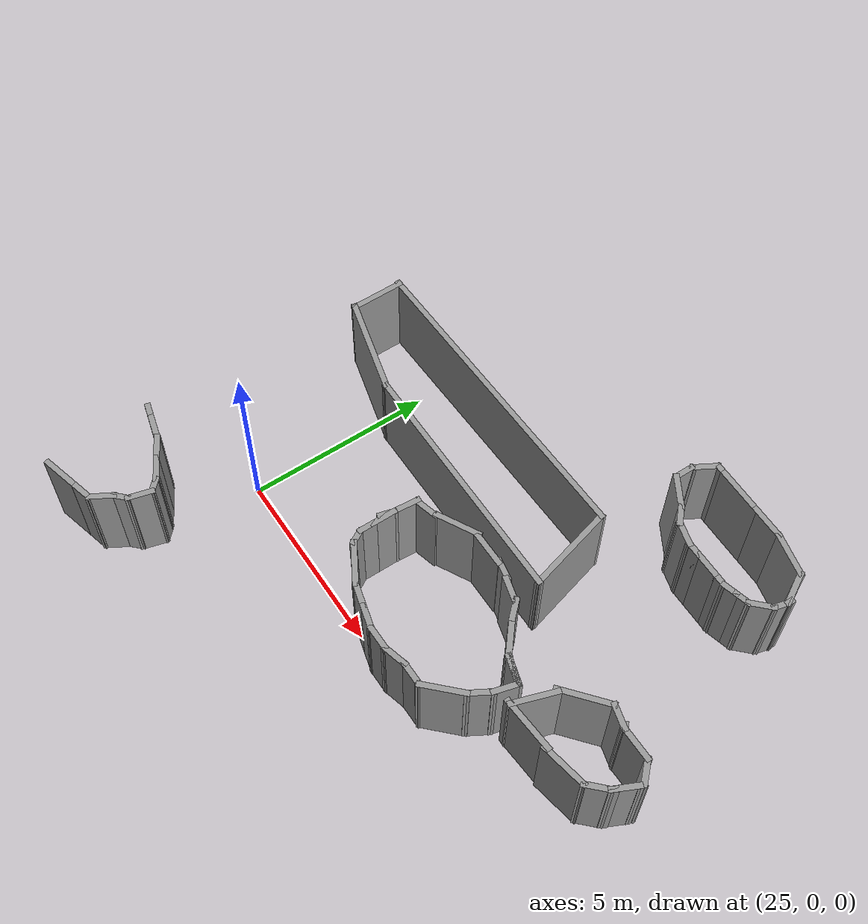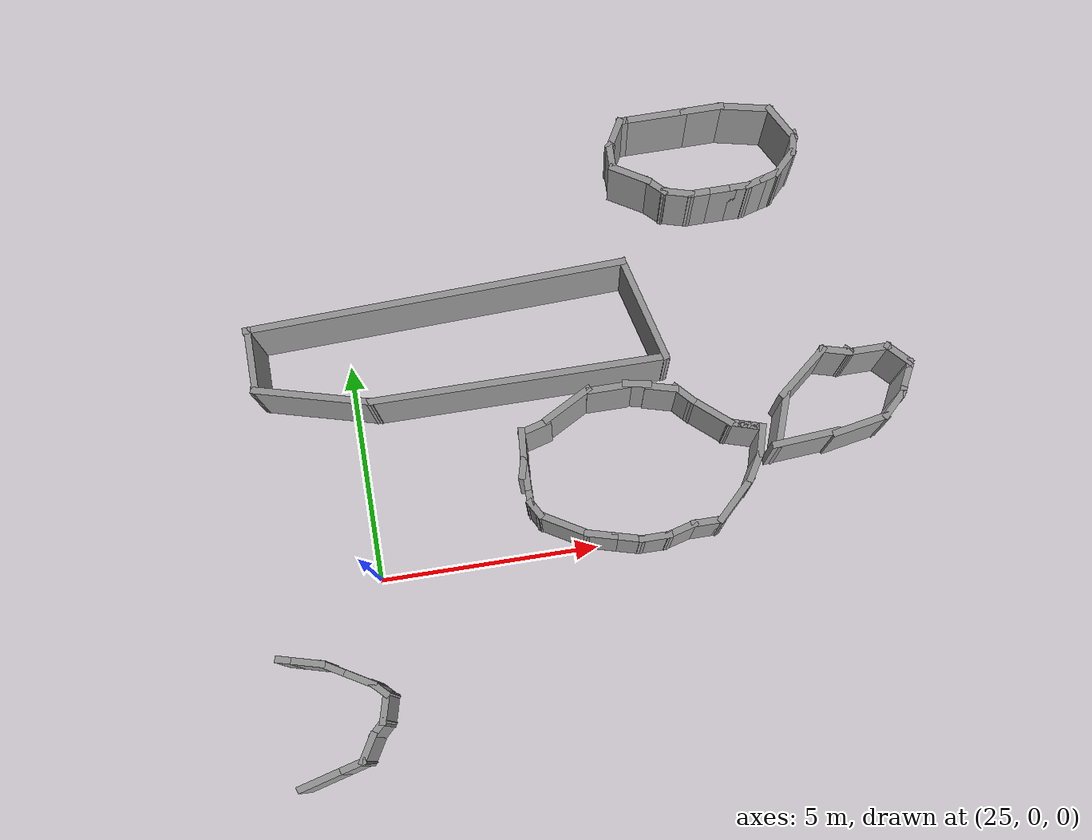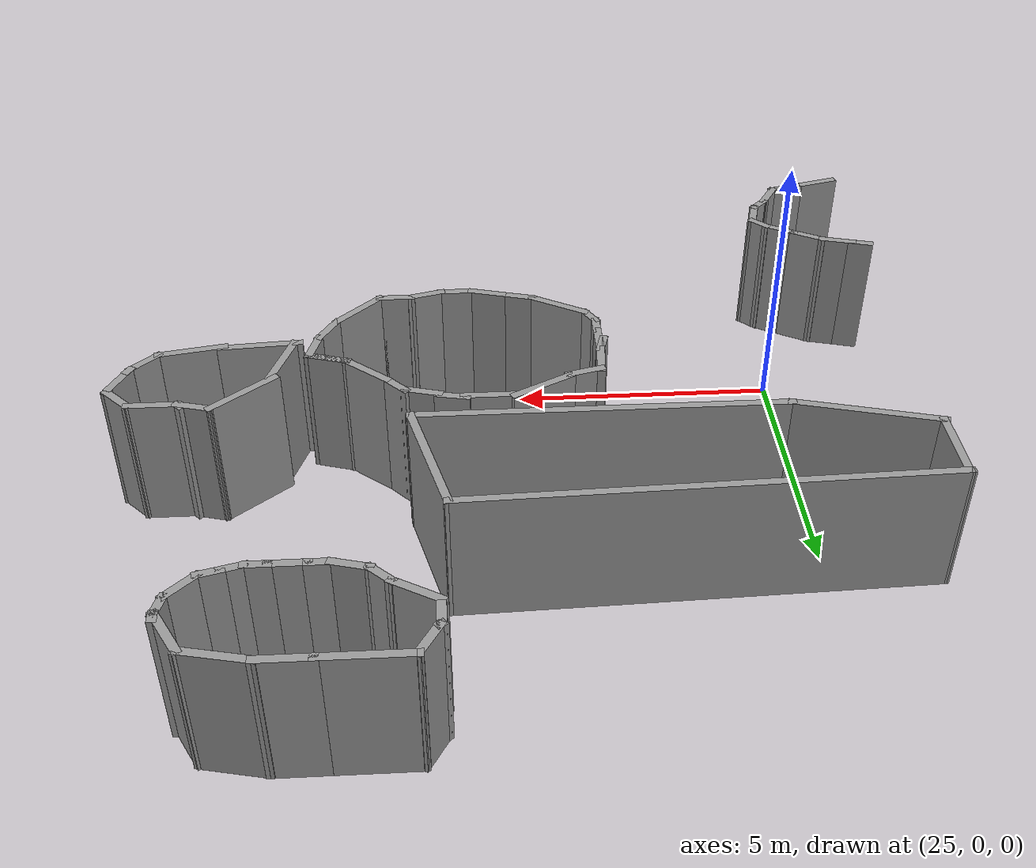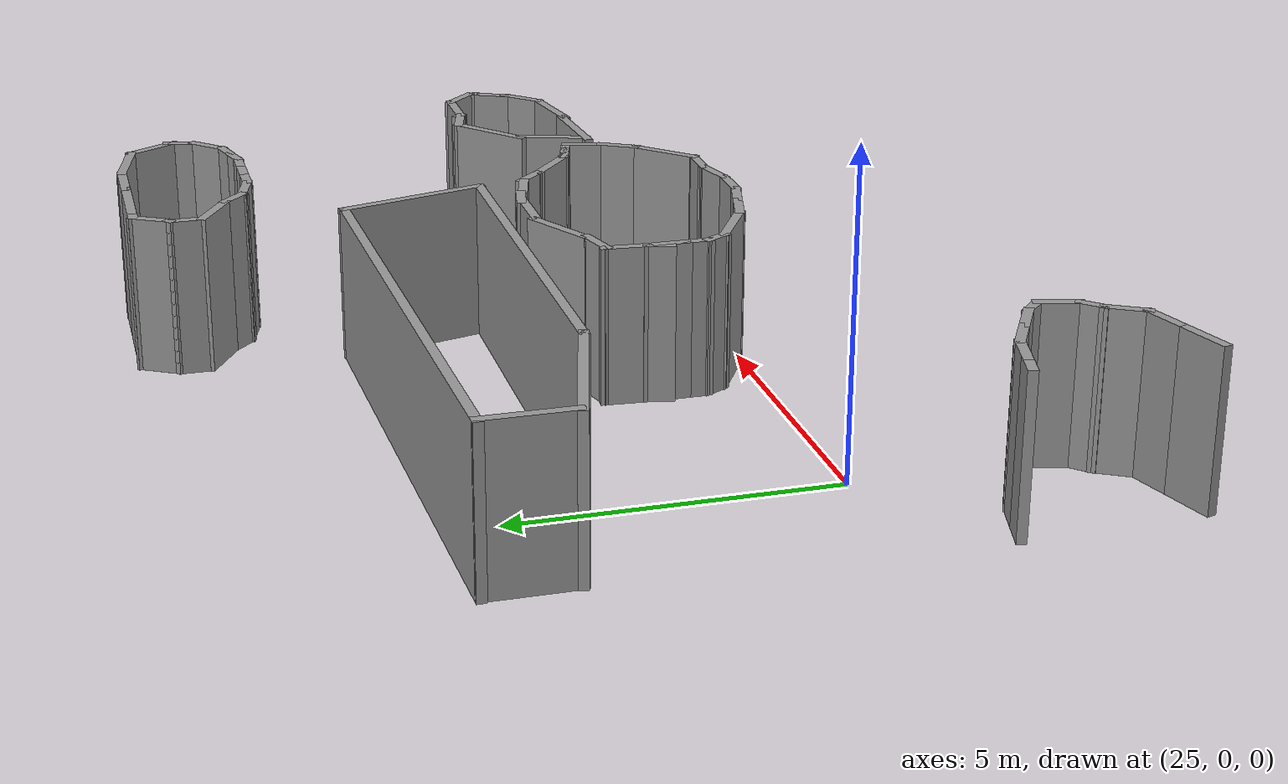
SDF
<sdf version="1.7">
 <model name="complex">
  <pose>10.9367 2.58093 0 0 -0 0</pose>
  <link name="Wall_268">
   <collision name="Wall_268_Collision">
    <geometry><box><size>1 0.15 2.5</size></box></geometry>
    <pose>0 0 1.25 0 -0 0</pose>
   </collision>
   <visual name="Wall_268_Visual">
    <pose>0 0 1.25 0 -0 0</pose>
    <geometry><box><size>1 0.15 2.5</size></box></geometry>
    <material>
     <script><uri>file://media/materials/scripts/gazebo.material</uri><name>Gazebo/Grey</name></script>
     <ambient>1 1 1 1</ambient>
    </material>
    <meta><layer>0</layer></meta>
   </visual>
   <pose>12.3211 -6.88156 0 0 -0 0.261799</pose>
  </link>
  <link name="Wall_269">
   <collision name="Wall_269_Collision">
    <geometry><box><size>0.75 0.15 2.5</size></box></geometry>
    <pose>0 0 1.25 0 -0 0</pose>
   </collision>
   <visual name="Wall_269_Visual">
    <pose>0 0 1.25 0 -0 0</pose>
    <geometry><box><size>0.75 0.15 2.5</size></box></geometry>
    <material>
     <script><uri>file://media/materials/scripts/gazebo.material</uri><name>Gazebo/Grey</name></script>
     <ambient>1 1 1 1</ambient>
    </material>
    <meta><layer>0</layer></meta>
   </visual>
   <pose>13.0214 -6.69391 0 0 -0 0.261799</pose>
  </link>
  <link name="Wall_270">
   <collision name="Wall_270_Collision">
    <geometry><box><size>0.75 0.15 2.5</size></box></geometry>
    <pose>0 0 1.25 0 -0 0</pose>
   </collision>
   <visual name="Wall_270_Visual">
    <pose>0 0 1.25 0 -0 0</pose>
    <geometry><box><size>0.75 0.15 2.5</size></box></geometry>
    <material>
     <script><uri>file://media/materials/scripts/gazebo.material</uri><name>Gazebo/Grey</name></script>
     <ambient>1 1 1 1</ambient>
    </material>
    <meta><layer>0</layer></meta>
   </visual>
   <pose>13.4612 -6.35646 0 0 -0 1.0472</pose>
  </link>
  <link name="Wall_271">
   <collision name="Wall_271_Collision">
    <geometry><box><size>0.5 0.15 2.5</size></box></geometry>
    <pose>0 0 1.25 0 -0 0</pose>
   </collision>
   <visual name="Wall_271_Visual">
    <pose>0 0 1.25 0 -0 0</pose>
    <geometry><box><size>0.5 0.15 2.5</size></box></geometry>
    <material>
     <script><uri>file://media/materials/scripts/gazebo.material</uri><name>Gazebo/Grey</name></script>
     <ambient>1 1 1 1</ambient>
    </material>
    <meta><layer>0</layer></meta>
   </visual>
   <pose>13.735 -5.97291 0 0 -0 0.785398</pose>
  </link>
  <link name="Wall_272">
   <collision name="Wall_272_Collision">
    <geometry><box><size>0.75 0.15 2.5</size></box></geometry>
    <pose>0 0 1.25 0 -0 0</pose>
   </collision>
   <visual name="Wall_272_Visual">
    <pose>0 0 1.25 0 -0 0</pose>
    <geometry><box><size>0.75 0.15 2.5</size></box></geometry>
    <material>
     <script><uri>file://media/materials/scripts/gazebo.material</uri><name>Gazebo/Grey</name></script>
     <ambient>1 1 1 1</ambient>
    </material>
    <meta><layer>0</layer></meta>
   </visual>
   <pose>13.9364 -5.55939 0 0 -0 1.309</pose>
  </link>
  <link name="Wall_273">
   <collision name="Wall_273_Collision">
    <geometry><box><size>0.5 0.15 2.5</size></box></geometry>
    <pose>0 0 1.25 0 -0 0</pose>
   </collision>
   <visual name="Wall_273_Visual">
    <pose>0 0 1.25 0 -0 0</pose>
    <geometry><box><size>0.5 0.15 2.5</size></box></geometry>
    <material>
     <script><uri>file://media/materials/scripts/gazebo.material</uri><name>Gazebo/Grey</name></script>
     <ambient>1 1 1 1</ambient>
    </material>
    <meta><layer>0</layer></meta>
   </visual>
   <pose>13.8903 -5.14587 0 0 -0 2.35619</pose>
  </link>
  <link name="Wall_274">
   <collision name="Wall_274_Collision">
    <geometry><box><size>0.75 0.15 2.5</size></box></geometry>
    <pose>0 0 1.25 0 -0 0</pose>
   </collision>
   <visual name="Wall_274_Visual">
    <pose>0 0 1.25 0 -0 0</pose>
    <geometry><box><size>0.75 0.15 2.5</size></box></geometry>
    <material>
     <script><uri>file://media/materials/scripts/gazebo.material</uri><name>Gazebo/Grey</name></script>
     <ambient>1 1 1 1</ambient>
    </material>
    <meta><layer>0</layer></meta>
   </visual>
   <pose>13.5067 -4.87212 0 0 -0 2.61799</pose>
  </link>
  <link name="Wall_275">
   <collision name="Wall_275_Collision">
    <geometry><box><size>0.75 0.15 2.5</size></box></geometry>
    <pose>0 0 1.25 0 -0 0</pose>
   </collision>
   <visual name="Wall_275_Visual">
    <pose>0 0 1.25 0 -0 0</pose>
    <geometry><box><size>0.75 0.15 2.5</size></box></geometry>
    <material>
     <script><uri>file://media/materials/scripts/gazebo.material</uri><name>Gazebo/Grey</name></script>
     <ambient>1 1 1 1</ambient>
    </material>
    <meta><layer>0</layer></meta>
   </visual>
   <pose>12.9871 -4.57212 0 0 -0 2.61799</pose>
  </link>
  <link name="Wall_276">
   <collision name="Wall_276_Collision">
    <geometry><box><size>0.75 0.15 2.5</size></box></geometry>
    <pose>0 0 1.25 0 -0 0</pose>
   </collision>
   <visual name="Wall_276_Visual">
    <pose>0 0 1.25 0 -0 0</pose>
    <geometry><box><size>0.75 0.15 2.5</size></box></geometry>
    <material>
     <script><uri>file://media/materials/scripts/gazebo.material</uri><name>Gazebo/Grey</name></script>
     <ambient>1 1 1 1</ambient>
    </material>
    <meta><layer>0</layer></meta>
   </visual>
   <pose>12.4375 -4.34448 0 0 -0 2.87979</pose>
  </link>
  <link name="Wall_277">
   <collision name="Wall_277_Collision">
    <geometry><box><size>0.5 0.15 2.5</size></box></geometry>
    <pose>0 0 1.25 0 -0 0</pose>
   </collision>
   <visual name="Wall_277_Visual">
    <pose>0 0 1.25 0 -0 0</pose>
    <geometry><box><size>0.5 0.15 2.5</size></box></geometry>
    <material>
     <script><uri>file://media/materials/scripts/gazebo.material</uri><name>Gazebo/Grey</name></script>
     <ambient>1 1 1 1</ambient>
    </material>
    <meta><layer>0</layer></meta>
   </visual>
   <pose>11.9787 -4.22154 0 0 -0 2.87979</pose>
  </link>
  <link name="Wall_327">
   <collision name="Wall_327_Collision">
    <geometry><box><size>1.5 0.15 2.5</size></box></geometry>
    <pose>0 0 1.25 0 -0 0</pose>
   </collision>
   <visual name="Wall_327_Visual">
    <pose>0 0 1.25 0 -0 0</pose>
    <geometry><box><size>1.5 0.15 2.5</size></box></geometry>
    <material>
     <script><uri>file://media/materials/scripts/gazebo.material</uri><name>Gazebo/Grey</name></script>
     <ambient>1 1 1 1</ambient>
    </material>
    <meta><layer>0</layer></meta>
   </visual>
   <pose>12.0917 2.4313 0 0 -0 -1.5708</pose>
  </link>
  <link name="Wall_328">
   <collision name="Wall_328_Collision">
    <geometry><box><size>2.73171 0.15 2.5</size></box></geometry>
    <pose>0 0 1.25 0 -0 0</pose>
   </collision>
   <visual name="Wall_328_Visual">
    <pose>0 0 1.25 0 -0 0</pose>
    <geometry><box><size>2.73171 0.15 2.5</size></box></geometry>
    <material>
     <script><uri>file://media/materials/scripts/gazebo.material</uri><name>Gazebo/Grey</name></script>
     <ambient>1 1 1 1</ambient>
    </material>
    <meta><layer>0</layer></meta>
   </visual>
   <pose>13.3078 1.4299 0 0 -0 -0.255633</pose>
  </link>
  <link name="Wall_329">
   <collision name="Wall_329_Collision">
    <geometry><box><size>6.75 0.15 2.5</size></box></geometry>
    <pose>0 0 1.25 0 -0 0</pose>
   </collision>
   <visual name="Wall_329_Visual">
    <pose>0 0 1.25 0 -0 0</pose>
    <geometry><box><size>6.75 0.15 2.5</size></box></geometry>
    <material>
     <script><uri>file://media/materials/scripts/gazebo.material</uri><name>Gazebo/Grey</name></script>
     <ambient>1 1 1 1</ambient>
    </material>
    <meta><layer>0</layer></meta>
   </visual>
   <pose>17.8567 1.10349 0 0 -0 0</pose>
  </link>
  <link name="Wall_330">
   <collision name="Wall_330_Collision">
    <geometry><box><size>2.5 0.15 2.5</size></box></geometry>
    <pose>0 0 1.25 0 -0 0</pose>
   </collision>
   <visual name="Wall_330_Visual">
    <pose>0 0 1.25 0 -0 0</pose>
    <geometry><box><size>2.5 0.15 2.5</size></box></geometry>
    <material>
     <script><uri>file://media/materials/scripts/gazebo.material</uri><name>Gazebo/Grey</name></script>
     <ambient>1 1 1 1</ambient>
    </material>
    <meta><layer>0</layer></meta>
   </visual>
   <pose>20.8526 2.23846 0 0 -0 1.8326</pose>
  </link>
  <link name="Wall_331">
   <collision name="Wall_331_Collision">
    <geometry><box><size>8.64379 0.15 2.5</size></box></geometry>
    <pose>0 0 1.25 0 -0 0</pose>
   </collision>
   <visual name="Wall_331_Visual">
    <pose>0 0 1.25 0 -0 0</pose>
    <geometry><box><size>8.64379 0.15 2.5</size></box></geometry>
    <material>
     <script><uri>file://media/materials/scripts/gazebo.material</uri><name>Gazebo/Grey</name></script>
     <ambient>1 1 1 1</ambient>
    </material>
    <meta><layer>0</layer></meta>
   </visual>
   <pose>16.3037 3.23986 0 0 -0 -3.11014</pose>
  </link>
  <link name="Wall_333">
   <collision name="Wall_333_Collision">
    <geometry><box><size>1 0.15 2.5</size></box></geometry>
    <pose>0 0 1.25 0 -0 0</pose>
   </collision>
   <visual name="Wall_333_Visual">
    <pose>0 0 1.25 0 -0 0</pose>
    <geometry><box><size>1 0.15 2.5</size></box></geometry>
    <material>
     <script><uri>file://media/materials/scripts/gazebo.material</uri><name>Gazebo/Grey</name></script>
     <ambient>1 1 1 1</ambient>
    </material>
    <meta><layer>0</layer></meta>
   </visual>
   <pose>22.8741 6.57239 0 0 -0 3.14159</pose>
  </link>
  <link name="Wall_334">
   <collision name="Wall_334_Collision">
    <geometry><box><size>1.5 0.15 2.5</size></box></geometry>
    <pose>0 0 1.25 0 -0 0</pose>
   </collision>
   <visual name="Wall_334_Visual">
    <pose>0 0 1.25 0 -0 0</pose>
    <geometry><box><size>1.5 0.15 2.5</size></box></geometry>
    <material>
     <script><uri>file://media/materials/scripts/gazebo.material</uri><name>Gazebo/Grey</name></script>
     <ambient>1 1 1 1</ambient>
    </material>
    <meta><layer>0</layer></meta>
   </visual>
   <pose>21.7741 6.57239 0 0 -0 3.14159</pose>
  </link>
  <link name="Wall_335">
   <collision name="Wall_335_Collision">
    <geometry><box><size>0.25 0.15 2.5</size></box></geometry>
    <pose>0 0 1.25 0 -0 0</pose>
   </collision>
   <visual name="Wall_335_Visual">
    <pose>0 0 1.25 0 -0 0</pose>
    <geometry><box><size>0.25 0.15 2.5</size></box></geometry>
    <material>
     <script><uri>file://media/materials/scripts/gazebo.material</uri><name>Gazebo/Grey</name></script>
     <ambient>1 1 1 1</ambient>
    </material>
    <meta><layer>0</layer></meta>
   </visual>
   <pose>21.0491 6.57239 0 0 -0 3.14159</pose>
  </link>
  <link name="Wall_336">
   <collision name="Wall_336_Collision">
    <geometry><box><size>0.75 0.15 2.5</size></box></geometry>
    <pose>0 0 1.25 0 -0 0</pose>
   </collision>
   <visual name="Wall_336_Visual">
    <pose>0 0 1.25 0 -0 0</pose>
    <geometry><box><size>0.75 0.15 2.5</size></box></geometry>
    <material>
     <script><uri>file://media/materials/scripts/gazebo.material</uri><name>Gazebo/Grey</name></script>
     <ambient>1 1 1 1</ambient>
    </material>
    <meta><layer>0</layer></meta>
   </visual>
   <pose>20.8491 6.31259 0 0 -0 -2.0944</pose>
  </link>
  <link name="Wall_337">
   <collision name="Wall_337_Collision">
    <geometry><box><size>0.183062 0.15 2.5</size></box></geometry>
    <pose>0 0 1.25 0 -0 0</pose>
   </collision>
   <visual name="Wall_337_Visual">
    <pose>0 0 1.25 0 -0 0</pose>
    <geometry><box><size>0.183062 0.15 2.5</size></box></geometry>
    <material>
     <script><uri>file://media/materials/scripts/gazebo.material</uri><name>Gazebo/Grey</name></script>
     <ambient>1 1 1 1</ambient>
    </material>
    <meta><layer>0</layer></meta>
   </visual>
   <pose>20.6862 6.04249 0 0 -0 -2.47001</pose>
  </link>
  <link name="Wall_338">
   <collision name="Wall_338_Collision">
    <geometry><box><size>0.5 0.15 2.5</size></box></geometry>
    <pose>0 0 1.25 0 -0 0</pose>
   </collision>
   <visual name="Wall_338_Visual">
    <pose>0 0 1.25 0 -0 0</pose>
    <geometry><box><size>0.5 0.15 2.5</size></box></geometry>
    <material>
     <script><uri>file://media/materials/scripts/gazebo.material</uri><name>Gazebo/Grey</name></script>
     <ambient>1 1 1 1</ambient>
    </material>
    <meta><layer>0</layer></meta>
   </visual>
   <pose>20.6732 5.81919 0 0 -0 -1.5708</pose>
  </link>
  <link name="Wall_340">
   <collision name="Wall_340_Collision">
    <geometry><box><size>1 0.15 2.5</size></box></geometry>
    <pose>0 0 1.25 0 -0 0</pose>
   </collision>
   <visual name="Wall_340_Visual">
    <pose>0 0 1.25 0 -0 0</pose>
    <geometry><box><size>1 0.15 2.5</size></box></geometry>
    <material>
     <script><uri>file://media/materials/scripts/gazebo.material</uri><name>Gazebo/Grey</name></script>
     <ambient>1 1 1 1</ambient>
    </material>
    <meta><layer>0</layer></meta>
   </visual>
   <pose>21.0372 5.33019 0 0 -0 -0.523599</pose>
  </link>
  <link name="Wall_342">
   <collision name="Wall_342_Collision">
    <geometry><box><size>0.5 0.15 2.5</size></box></geometry>
    <pose>0 0 1.25 0 -0 0</pose>
   </collision>
   <visual name="Wall_342_Visual">
    <pose>0 0 1.25 0 -0 0</pose>
    <geometry><box><size>0.5 0.15 2.5</size></box></geometry>
    <material>
     <script><uri>file://media/materials/scripts/gazebo.material</uri><name>Gazebo/Grey</name></script>
     <ambient>1 1 1 1</ambient>
    </material>
    <meta><layer>0</layer></meta>
   </visual>
   <pose>22.4843 4.66157 0 0 -0 0</pose>
  </link>
  <link name="Wall_343">
   <collision name="Wall_343_Collision">
    <geometry><box><size>0.75 0.15 2.5</size></box></geometry>
    <pose>0 0 1.25 0 -0 0</pose>
   </collision>
   <visual name="Wall_343_Visual">
    <pose>0 0 1.25 0 -0 0</pose>
    <geometry><box><size>0.75 0.15 2.5</size></box></geometry>
    <material>
     <script><uri>file://media/materials/scripts/gazebo.material</uri><name>Gazebo/Grey</name></script>
     <ambient>1 1 1 1</ambient>
    </material>
    <meta><layer>0</layer></meta>
   </visual>
   <pose>22.9593 4.66157 0 0 -0 0</pose>
  </link>
  <link name="Wall_344">
   <collision name="Wall_344_Collision">
    <geometry><box><size>0.5 0.15 2.5</size></box></geometry>
    <pose>0 0 1.25 0 -0 0</pose>
   </collision>
   <visual name="Wall_344_Visual">
    <pose>0 0 1.25 0 -0 0</pose>
    <geometry><box><size>0.5 0.15 2.5</size></box></geometry>
    <material>
     <script><uri>file://media/materials/scripts/gazebo.material</uri><name>Gazebo/Grey</name></script>
     <ambient>1 1 1 1</ambient>
    </material>
    <meta><layer>0</layer></meta>
   </visual>
   <pose>23.4343 4.66157 0 0 -0 0</pose>
  </link>
  <link name="Wall_345">
   <collision name="Wall_345_Collision">
    <geometry><box><size>0.5 0.15 2.5</size></box></geometry>
    <pose>0 0 1.25 0 -0 0</pose>
   </collision>
   <visual name="Wall_345_Visual">
    <pose>0 0 1.25 0 -0 0</pose>
    <geometry><box><size>0.5 0.15 2.5</size></box></geometry>
    <material>
     <script><uri>file://media/materials/scripts/gazebo.material</uri><name>Gazebo/Grey</name></script>
     <ambient>1 1 1 1</ambient>
    </material>
    <meta><layer>0</layer></meta>
   </visual>
   <pose>23.7784 4.70686 0 0 -0 0.261799</pose>
  </link>
  <link name="Wall_346">
   <collision name="Wall_346_Collision">
    <geometry><box><size>0.5 0.15 2.5</size></box></geometry>
    <pose>0 0 1.25 0 -0 0</pose>
   </collision>
   <visual name="Wall_346_Visual">
    <pose>0 0 1.25 0 -0 0</pose>
    <geometry><box><size>0.5 0.15 2.5</size></box></geometry>
    <material>
     <script><uri>file://media/materials/scripts/gazebo.material</uri><name>Gazebo/Grey</name></script>
     <ambient>1 1 1 1</ambient>
    </material>
    <meta><layer>0</layer></meta>
   </visual>
   <pose>24.1164 4.79745 0 0 -0 0.261799</pose>
  </link>
  <link name="Wall_347">
   <collision name="Wall_347_Collision">
    <geometry><box><size>0.75 0.15 2.5</size></box></geometry>
    <pose>0 0 1.25 0 -0 0</pose>
   </collision>
   <visual name="Wall_347_Visual">
    <pose>0 0 1.25 0 -0 0</pose>
    <geometry><box><size>0.75 0.15 2.5</size></box></geometry>
    <material>
     <script><uri>file://media/materials/scripts/gazebo.material</uri><name>Gazebo/Grey</name></script>
     <ambient>1 1 1 1</ambient>
    </material>
    <meta><layer>0</layer></meta>
   </visual>
   <pose>24.4976 5.05487 0 0 -0 0.785398</pose>
  </link>
  <link name="Wall_348">
   <collision name="Wall_348_Collision">
    <geometry><box><size>0.5 0.15 2.5</size></box></geometry>
    <pose>0 0 1.25 0 -0 0</pose>
   </collision>
   <visual name="Wall_348_Visual">
    <pose>0 0 1.25 0 -0 0</pose>
    <geometry><box><size>0.5 0.15 2.5</size></box></geometry>
    <material>
     <script><uri>file://media/materials/scripts/gazebo.material</uri><name>Gazebo/Grey</name></script>
     <ambient>1 1 1 1</ambient>
    </material>
    <meta><layer>0</layer></meta>
   </visual>
   <pose>24.755 5.43604 0 0 -0 1.309</pose>
  </link>
  <link name="Wall_349">
   <collision name="Wall_349_Collision">
    <geometry><box><size>0.25 0.15 2.5</size></box></geometry>
    <pose>0 0 1.25 0 -0 0</pose>
   </collision>
   <visual name="Wall_349_Visual">
    <pose>0 0 1.25 0 -0 0</pose>
    <geometry><box><size>0.25 0.15 2.5</size></box></geometry>
    <material>
     <script><uri>file://media/materials/scripts/gazebo.material</uri><name>Gazebo/Grey</name></script>
     <ambient>1 1 1 1</ambient>
    </material>
    <meta><layer>0</layer></meta>
   </visual>
   <pose>24.8003 5.65508 0 0 -0 1.5708</pose>
  </link>
  <link name="Wall_351">
   <collision name="Wall_351_Collision">
    <geometry><box><size>1 0.15 2.5</size></box></geometry>
    <pose>0 0 1.25 0 -0 0</pose>
   </collision>
   <visual name="Wall_351_Visual">
    <pose>0 0 1.25 0 -0 0</pose>
    <geometry><box><size>1 0.15 2.5</size></box></geometry>
    <material>
     <script><uri>file://media/materials/scripts/gazebo.material</uri><name>Gazebo/Grey</name></script>
     <ambient>1 1 1 1</ambient>
    </material>
    <meta><layer>0</layer></meta>
   </visual>
   <pose>24.5878 5.97314 0 0 -0 2.0944</pose>
  </link>
  <link name="Wall_352">
   <collision name="Wall_352_Collision">
    <geometry><box><size>1.25079 0.15 2.5</size></box></geometry>
    <pose>0 0 1.25 0 -0 0</pose>
   </collision>
   <visual name="Wall_352_Visual">
    <pose>0 0 1.25 0 -0 0</pose>
    <geometry><box><size>1.25079 0.15 2.5</size></box></geometry>
    <material>
     <script><uri>file://media/materials/scripts/gazebo.material</uri><name>Gazebo/Grey</name></script>
     <ambient>1 1 1 1</ambient>
    </material>
    <meta><layer>0</layer></meta>
   </visual>
   <pose>23.8372 6.4568 0 0 -0 2.92999</pose>
  </link>
  <link name="Wall_354">
   <collision name="Wall_354_Collision">
    <geometry><box><size>1 0.15 2.5</size></box></geometry>
    <pose>0 0 1.25 0 -0 0</pose>
   </collision>
   <visual name="Wall_354_Visual">
    <pose>0 0 1.25 0 -0 0</pose>
    <geometry><box><size>1 0.15 2.5</size></box></geometry>
    <material>
     <script><uri>file://media/materials/scripts/gazebo.material</uri><name>Gazebo/Grey</name></script>
     <ambient>1 1 1 1</ambient>
    </material>
    <meta><layer>0</layer></meta>
   </visual>
   <pose>19.7961 0.601329 0 0 -0 3.14159</pose>
  </link>
  <link name="Wall_355">
   <collision name="Wall_355_Collision">
    <geometry><box><size>1.28471 0.15 2.5</size></box></geometry>
    <pose>0 0 1.25 0 -0 0</pose>
   </collision>
   <visual name="Wall_355_Visual">
    <pose>0 0 1.25 0 -0 0</pose>
    <geometry><box><size>1.28471 0.15 2.5</size></box></geometry>
    <material>
     <script><uri>file://media/materials/scripts/gazebo.material</uri><name>Gazebo/Grey</name></script>
     <ambient>1 1 1 1</ambient>
    </material>
    <meta><layer>0</layer></meta>
   </visual>
   <pose>18.8339 0.370037 0 0 -0 -2.64787</pose>
  </link>
  <link name="Wall_356">
   <collision name="Wall_356_Collision">
    <geometry><box><size>0.75 0.15 2.5</size></box></geometry>
    <pose>0 0 1.25 0 -0 0</pose>
   </collision>
   <visual name="Wall_356_Visual">
    <pose>0 0 1.25 0 -0 0</pose>
    <geometry><box><size>0.75 0.15 2.5</size></box></geometry>
    <material>
     <script><uri>file://media/materials/scripts/gazebo.material</uri><name>Gazebo/Grey</name></script>
     <ambient>1 1 1 1</ambient>
    </material>
    <meta><layer>0</layer></meta>
   </visual>
   <pose>18.0445 -0.014064 0 0 -0 -2.87979</pose>
  </link>
  <link name="Wall_357">
   <collision name="Wall_357_Collision">
    <geometry><box><size>0.801562 0.15 2.5</size></box></geometry>
    <pose>0 0 1.25 0 -0 0</pose>
   </collision>
   <visual name="Wall_357_Visual">
    <pose>0 0 1.25 0 -0 0</pose>
    <geometry><box><size>0.801562 0.15 2.5</size></box></geometry>
    <material>
     <script><uri>file://media/materials/scripts/gazebo.material</uri><name>Gazebo/Grey</name></script>
     <ambient>1 1 1 1</ambient>
    </material>
    <meta><layer>0</layer></meta>
   </visual>
   <pose>17.7305 -0.379007 0 0 -0 -1.64521</pose>
  </link>
  <link name="Wall_358">
   <collision name="Wall_358_Collision">
    <geometry><box><size>0.5 0.15 2.5</size></box></geometry>
    <pose>0 0 1.25 0 -0 0</pose>
   </collision>
   <visual name="Wall_358_Visual">
    <pose>0 0 1.25 0 -0 0</pose>
    <geometry><box><size>0.5 0.15 2.5</size></box></geometry>
    <material>
     <script><uri>file://media/materials/scripts/gazebo.material</uri><name>Gazebo/Grey</name></script>
     <ambient>1 1 1 1</ambient>
    </material>
    <meta><layer>0</layer></meta>
   </visual>
   <pose>17.661 -0.872923 0 0 -0 -1.8326</pose>
  </link>
  <link name="Wall_360">
   <collision name="Wall_360_Collision">
    <geometry><box><size>0.75 0.15 2.5</size></box></geometry>
    <pose>0 0 1.25 0 -0 0</pose>
   </collision>
   <visual name="Wall_360_Visual">
    <pose>0 0 1.25 0 -0 0</pose>
    <geometry><box><size>0.75 0.15 2.5</size></box></geometry>
    <material>
     <script><uri>file://media/materials/scripts/gazebo.material</uri><name>Gazebo/Grey</name></script>
     <ambient>1 1 1 1</ambient>
    </material>
    <meta><layer>0</layer></meta>
   </visual>
   <pose>17.7063 -1.00389 0 0 -0 -1.5708</pose>
  </link>
  <link name="Wall_361">
   <collision name="Wall_361_Collision">
    <geometry><box><size>0.5 0.15 2.5</size></box></geometry>
    <pose>0 0 1.25 0 -0 0</pose>
   </collision>
   <visual name="Wall_361_Visual">
    <pose>0 0 1.25 0 -0 0</pose>
    <geometry><box><size>0.5 0.15 2.5</size></box></geometry>
    <material>
     <script><uri>file://media/materials/scripts/gazebo.material</uri><name>Gazebo/Grey</name></script>
     <ambient>1 1 1 1</ambient>
    </material>
    <meta><layer>0</layer></meta>
   </visual>
   <pose>17.7063 -1.47889 0 0 -0 -1.5708</pose>
  </link>
  <link name="Wall_362">
   <collision name="Wall_362_Collision">
    <geometry><box><size>0.5 0.15 2.5</size></box></geometry>
    <pose>0 0 1.25 0 -0 0</pose>
   </collision>
   <visual name="Wall_362_Visual">
    <pose>0 0 1.25 0 -0 0</pose>
    <geometry><box><size>0.5 0.15 2.5</size></box></geometry>
    <material>
     <script><uri>file://media/materials/scripts/gazebo.material</uri><name>Gazebo/Grey</name></script>
     <ambient>1 1 1 1</ambient>
    </material>
    <meta><layer>0</layer></meta>
   </visual>
   <pose>17.7938 -1.80544 0 0 -0 -1.0472</pose>
  </link>
  <link name="Wall_363">
   <collision name="Wall_363_Collision">
    <geometry><box><size>1.25 0.15 2.5</size></box></geometry>
    <pose>0 0 1.25 0 -0 0</pose>
   </collision>
   <visual name="Wall_363_Visual">
    <pose>0 0 1.25 0 -0 0</pose>
    <geometry><box><size>1.25 0.15 2.5</size></box></geometry>
    <material>
     <script><uri>file://media/materials/scripts/gazebo.material</uri><name>Gazebo/Grey</name></script>
     <ambient>1 1 1 1</ambient>
    </material>
    <meta><layer>0</layer></meta>
   </visual>
   <pose>18.3576 -2.23199 0 0 -0 -0.523599</pose>
  </link>
  <link name="Wall_364">
   <collision name="Wall_364_Collision">
    <geometry><box><size>0.75 0.15 2.5</size></box></geometry>
    <pose>0 0 1.25 0 -0 0</pose>
   </collision>
   <visual name="Wall_364_Visual">
    <pose>0 0 1.25 0 -0 0</pose>
    <geometry><box><size>0.75 0.15 2.5</size></box></geometry>
    <material>
     <script><uri>file://media/materials/scripts/gazebo.material</uri><name>Gazebo/Grey</name></script>
     <ambient>1 1 1 1</ambient>
    </material>
    <meta><layer>0</layer></meta>
   </visual>
   <pose>19.1237 -2.58464 0 0 -0 -0.261799</pose>
  </link>
  <link name="Wall_365">
   <collision name="Wall_365_Collision">
    <geometry><box><size>0.75 0.15 2.5</size></box></geometry>
    <pose>0 0 1.25 0 -0 0</pose>
   </collision>
   <visual name="Wall_365_Visual">
    <pose>0 0 1.25 0 -0 0</pose>
    <geometry><box><size>0.75 0.15 2.5</size></box></geometry>
    <material>
     <script><uri>file://media/materials/scripts/gazebo.material</uri><name>Gazebo/Grey</name></script>
     <ambient>1 1 1 1</ambient>
    </material>
    <meta><layer>0</layer></meta>
   </visual>
   <pose>19.7033 -2.73993 0 0 -0 -0.261799</pose>
  </link>
  <link name="Wall_366">
   <collision name="Wall_366_Collision">
    <geometry><box><size>0.75 0.15 2.5</size></box></geometry>
    <pose>0 0 1.25 0 -0 0</pose>
   </collision>
   <visual name="Wall_366_Visual">
    <pose>0 0 1.25 0 -0 0</pose>
    <geometry><box><size>0.75 0.15 2.5</size></box></geometry>
    <material>
     <script><uri>file://media/materials/scripts/gazebo.material</uri><name>Gazebo/Grey</name></script>
     <ambient>1 1 1 1</ambient>
    </material>
    <meta><layer>0</layer></meta>
   </visual>
   <pose>20.2931 -2.81758 0 0 -0 0</pose>
  </link>
  <link name="Wall_367">
   <collision name="Wall_367_Collision">
    <geometry><box><size>0.75 0.15 2.5</size></box></geometry>
    <pose>0 0 1.25 0 -0 0</pose>
   </collision>
   <visual name="Wall_367_Visual">
    <pose>0 0 1.25 0 -0 0</pose>
    <geometry><box><size>0.75 0.15 2.5</size></box></geometry>
    <material>
     <script><uri>file://media/materials/scripts/gazebo.material</uri><name>Gazebo/Grey</name></script>
     <ambient>1 1 1 1</ambient>
    </material>
    <meta><layer>0</layer></meta>
   </visual>
   <pose>20.8828 -2.73993 0 0 -0 0.261799</pose>
  </link>
  <link name="Wall_368">
   <collision name="Wall_368_Collision">
    <geometry><box><size>0.75 0.15 2.5</size></box></geometry>
    <pose>0 0 1.25 0 -0 0</pose>
   </collision>
   <visual name="Wall_368_Visual">
    <pose>0 0 1.25 0 -0 0</pose>
    <geometry><box><size>0.75 0.15 2.5</size></box></geometry>
    <material>
     <script><uri>file://media/materials/scripts/gazebo.material</uri><name>Gazebo/Grey</name></script>
     <ambient>1 1 1 1</ambient>
    </material>
    <meta><layer>0</layer></meta>
   </visual>
   <pose>21.4726 -2.66229 0 0 -0 0</pose>
  </link>
  <link name="Wall_369">
   <collision name="Wall_369_Collision">
    <geometry><box><size>0.15 0.15 2.5</size></box></geometry>
    <pose>0 0 1.25 0 -0 0</pose>
   </collision>
   <visual name="Wall_369_Visual">
    <pose>0 0 1.25 0 -0 0</pose>
    <geometry><box><size>0.15 0.15 2.5</size></box></geometry>
    <material>
     <script><uri>file://media/materials/scripts/gazebo.material</uri><name>Gazebo/Grey</name></script>
     <ambient>1 1 1 1</ambient>
    </material>
    <meta><layer>0</layer></meta>
   </visual>
   <pose>21.7726 -2.66229 0 0 -0 0</pose>
  </link>
  <link name="Wall_370">
   <collision name="Wall_370_Collision">
    <geometry><box><size>1.25 0.15 2.5</size></box></geometry>
    <pose>0 0 1.25 0 -0 0</pose>
   </collision>
   <visual name="Wall_370_Visual">
    <pose>0 0 1.25 0 -0 0</pose>
    <geometry><box><size>1.25 0.15 2.5</size></box></geometry>
    <material>
     <script><uri>file://media/materials/scripts/gazebo.material</uri><name>Gazebo/Grey</name></script>
     <ambient>1 1 1 1</ambient>
    </material>
    <meta><layer>0</layer></meta>
   </visual>
   <pose>22.1615 -2.27338 0 0 -0 0.785398</pose>
  </link>
  <link name="Wall_371">
   <collision name="Wall_371_Collision">
    <geometry><box><size>0.75 0.15 2.5</size></box></geometry>
    <pose>0 0 1.25 0 -0 0</pose>
   </collision>
   <visual name="Wall_371_Visual">
    <pose>0 0 1.25 0 -0 0</pose>
    <geometry><box><size>0.75 0.15 2.5</size></box></geometry>
    <material>
     <script><uri>file://media/materials/scripts/gazebo.material</uri><name>Gazebo/Grey</name></script>
     <ambient>1 1 1 1</ambient>
    </material>
    <meta><layer>0</layer></meta>
   </visual>
   <pose>22.7004 -1.62466 0 0 -0 1.0472</pose>
  </link>
  <link name="Wall_372">
   <collision name="Wall_372_Collision">
    <geometry><box><size>0.75 0.15 2.5</size></box></geometry>
    <pose>0 0 1.25 0 -0 0</pose>
   </collision>
   <visual name="Wall_372_Visual">
    <pose>0 0 1.25 0 -0 0</pose>
    <geometry><box><size>0.75 0.15 2.5</size></box></geometry>
    <material>
     <script><uri>file://media/materials/scripts/gazebo.material</uri><name>Gazebo/Grey</name></script>
     <ambient>1 1 1 1</ambient>
    </material>
    <meta><layer>0</layer></meta>
   </visual>
   <pose>22.9281 -1.07508 0 0 -0 1.309</pose>
  </link>
  <link name="Wall_373">
   <collision name="Wall_373_Collision">
    <geometry><box><size>0.869093 0.15 2.5</size></box></geometry>
    <pose>0 0 1.25 0 -0 0</pose>
   </collision>
   <visual name="Wall_373_Visual">
    <pose>0 0 1.25 0 -0 0</pose>
    <geometry><box><size>0.869093 0.15 2.5</size></box></geometry>
    <material>
     <script><uri>file://media/materials/scripts/gazebo.material</uri><name>Gazebo/Grey</name></script>
     <ambient>1 1 1 1</ambient>
    </material>
    <meta><layer>0</layer></meta>
   </visual>
   <pose>22.6615 -0.681482 0 0 -0 2.84868</pose>
  </link>
  <link name="Wall_374">
   <collision name="Wall_374_Collision">
    <geometry><box><size>1.10627 0.15 2.5</size></box></geometry>
    <pose>0 0 1.25 0 -0 0</pose>
   </collision>
   <visual name="Wall_374_Visual">
    <pose>0 0 1.25 0 -0 0</pose>
    <geometry><box><size>1.10627 0.15 2.5</size></box></geometry>
    <material>
     <script><uri>file://media/materials/scripts/gazebo.material</uri><name>Gazebo/Grey</name></script>
     <ambient>1 1 1 1</ambient>
    </material>
    <meta><layer>0</layer></meta>
   </visual>
   <pose>21.9505 -0.270963 0 0 -0 2.4452</pose>
  </link>
  <link name="Wall_375">
   <collision name="Wall_375_Collision">
    <geometry><box><size>0.639256 0.15 2.5</size></box></geometry>
    <pose>0 0 1.25 0 -0 0</pose>
   </collision>
   <visual name="Wall_375_Visual">
    <pose>0 0 1.25 0 -0 0</pose>
    <geometry><box><size>0.639256 0.15 2.5</size></box></geometry>
    <material>
     <script><uri>file://media/materials/scripts/gazebo.material</uri><name>Gazebo/Grey</name></script>
     <ambient>1 1 1 1</ambient>
    </material>
    <meta><layer>0</layer></meta>
   </visual>
   <pose>21.4146 0.21257 0 0 -0 2.33366</pose>
  </link>
  <link name="Wall_376">
   <collision name="Wall_376_Collision">
    <geometry><box><size>0.75 0.15 2.5</size></box></geometry>
    <pose>0 0 1.25 0 -0 0</pose>
   </collision>
   <visual name="Wall_376_Visual">
    <pose>0 0 1.25 0 -0 0</pose>
    <geometry><box><size>0.75 0.15 2.5</size></box></geometry>
    <material>
     <script><uri>file://media/materials/scripts/gazebo.material</uri><name>Gazebo/Grey</name></script>
     <ambient>1 1 1 1</ambient>
    </material>
    <meta><layer>0</layer></meta>
   </visual>
   <pose>20.9558 0.429466 0 0 -0 2.87979</pose>
  </link>
  <link name="Wall_377">
   <collision name="Wall_377_Collision">
    <geometry><box><size>0.641615 0.15 2.5</size></box></geometry>
    <pose>0 0 1.25 0 -0 0</pose>
   </collision>
   <visual name="Wall_377_Visual">
    <pose>0 0 1.25 0 -0 0</pose>
    <geometry><box><size>0.641615 0.15 2.5</size></box></geometry>
    <material>
     <script><uri>file://media/materials/scripts/gazebo.material</uri><name>Gazebo/Grey</name></script>
     <ambient>1 1 1 1</ambient>
    </material>
    <meta><layer>0</layer></meta>
   </visual>
   <pose>20.4248 0.591802 0 0 -0 2.94875</pose>
  </link>
  <link name="Wall_382">
   <collision name="Wall_382_Collision">
    <geometry><box><size>0.75 0.15 2.5</size></box></geometry>
    <pose>0 0 1.25 0 -0 0</pose>
   </collision>
   <visual name="Wall_382_Visual">
    <pose>0 0 1.25 0 -0 0</pose>
    <geometry><box><size>0.75 0.15 2.5</size></box></geometry>
    <material>
     <script><uri>file://media/materials/scripts/gazebo.material</uri><name>Gazebo/Grey</name></script>
     <ambient>1 1 1 1</ambient>
    </material>
    <meta><layer>0</layer></meta>
   </visual>
   <pose>22.0196 4.73921 0 0 -0 2.87979</pose>
  </link>
  <link name="Wall_383">
   <collision name="Wall_383_Collision">
    <geometry><box><size>0.15 0.15 2.5</size></box></geometry>
    <pose>0 0 1.25 0 -0 0</pose>
   </collision>
   <visual name="Wall_383_Visual">
    <pose>0 0 1.25 0 -0 0</pose>
    <geometry><box><size>0.15 0.15 2.5</size></box></geometry>
    <material>
     <script><uri>file://media/materials/scripts/gazebo.material</uri><name>Gazebo/Grey</name></script>
     <ambient>1 1 1 1</ambient>
    </material>
    <meta><layer>0</layer></meta>
   </visual>
   <pose>21.7298 4.81686 0 0 -0 0</pose>
  </link>
  <link name="Wall_384">
   <collision name="Wall_384_Collision">
    <geometry><box><size>0.592515 0.15 2.5</size></box></geometry>
    <pose>0 0 1.25 0 -0 0</pose>
   </collision>
   <visual name="Wall_384_Visual">
    <pose>0 0 1.25 0 -0 0</pose>
    <geometry><box><size>0.592515 0.15 2.5</size></box></geometry>
    <material>
     <script><uri>file://media/materials/scripts/gazebo.material</uri><name>Gazebo/Grey</name></script>
     <ambient>1 1 1 1</ambient>
    </material>
    <meta><layer>0</layer></meta>
   </visual>
   <pose>21.5675 4.96728 0 0 -0 2.39406</pose>
  </link>
  <link name="Wall_392">
   <collision name="Wall_392_Collision">
    <geometry><box><size>0.15 0.15 2.5</size></box></geometry>
    <pose>0 0 1.25 0 -0 0</pose>
   </collision>
   <visual name="Wall_392_Visual">
    <pose>0 0 1.25 0 -0 0</pose>
    <geometry><box><size>0.15 0.15 2.5</size></box></geometry>
    <material>
     <script><uri>file://media/materials/scripts/gazebo.material</uri><name>Gazebo/Grey</name></script>
     <ambient>1 1 1 1</ambient>
    </material>
    <meta><layer>0</layer></meta>
   </visual>
   <pose>22.3173 -0.577666 0 0 -0 0</pose>
  </link>
  <link name="Wall_393">
   <collision name="Wall_393_Collision">
    <geometry><box><size>0.869093 0.15 2.5</size></box></geometry>
    <pose>0 0 1.25 0 -0 0</pose>
   </collision>
   <visual name="Wall_393_Visual">
    <pose>0 0 1.25 0 -0 0</pose>
    <geometry><box><size>0.869093 0.15 2.5</size></box></geometry>
    <material>
     <script><uri>file://media/materials/scripts/gazebo.material</uri><name>Gazebo/Grey</name></script>
     <ambient>1 1 1 1</ambient>
    </material>
    <meta><layer>0</layer></meta>
   </visual>
   <pose>22.6615 -0.681482 0 0 -0 -0.292913</pose>
  </link>
  <link name="Wall_399">
   <collision name="Wall_399_Collision">
    <geometry><box><size>0.25 0.15 2.5</size></box></geometry>
    <pose>0 0 1.25 0 -0 0</pose>
   </collision>
   <visual name="Wall_399_Visual">
    <pose>0 0 1.25 0 -0 0</pose>
    <geometry><box><size>0.25 0.15 2.5</size></box></geometry>
    <material>
     <script><uri>file://media/materials/scripts/gazebo.material</uri><name>Gazebo/Grey</name></script>
     <ambient>1 1 1 1</ambient>
    </material>
    <meta><layer>0</layer></meta>
   </visual>
   <pose>25.1534 0.603519 0 0 -0 2.35619</pose>
  </link>
  <link name="Wall_401">
   <collision name="Wall_401_Collision">
    <geometry><box><size>0.75 0.15 2.5</size></box></geometry>
    <pose>0 0 1.25 0 -0 0</pose>
   </collision>
   <visual name="Wall_401_Visual">
    <pose>0 0 1.25 0 -0 0</pose>
    <geometry><box><size>0.75 0.15 2.5</size></box></geometry>
    <material>
     <script><uri>file://media/materials/scripts/gazebo.material</uri><name>Gazebo/Grey</name></script>
     <ambient>1 1 1 1</ambient>
    </material>
    <meta><layer>0</layer></meta>
   </visual>
   <pose>24.8989 0.645809 0 0 -0 2.87979</pose>
  </link>
  <link name="Wall_402">
   <collision name="Wall_402_Collision">
    <geometry><box><size>1.50104 0.15 2.5</size></box></geometry>
    <pose>0 0 1.25 0 -0 0</pose>
   </collision>
   <visual name="Wall_402_Visual">
    <pose>0 0 1.25 0 -0 0</pose>
    <geometry><box><size>1.50104 0.15 2.5</size></box></geometry>
    <material>
     <script><uri>file://media/materials/scripts/gazebo.material</uri><name>Gazebo/Grey</name></script>
     <ambient>1 1 1 1</ambient>
    </material>
    <meta><layer>0</layer></meta>
   </visual>
   <pose>24.0913 0.289688 0 0 -0 -2.44433</pose>
  </link>
  <link name="Wall_403">
   <collision name="Wall_403_Collision">
    <geometry><box><size>1.28332 0.15 2.5</size></box></geometry>
    <pose>0 0 1.25 0 -0 0</pose>
   </collision>
   <visual name="Wall_403_Visual">
    <pose>0 0 1.25 0 -0 0</pose>
    <geometry><box><size>1.28332 0.15 2.5</size></box></geometry>
    <material>
     <script><uri>file://media/materials/scripts/gazebo.material</uri><name>Gazebo/Grey</name></script>
     <ambient>1 1 1 1</ambient>
    </material>
    <meta><layer>0</layer></meta>
   </visual>
   <pose>23.472 -0.682371 0 0 -0 -1.88856</pose>
  </link>
  <link name="Wall_404">
   <collision name="Wall_404_Collision">
    <geometry><box><size>1.55782 0.15 2.5</size></box></geometry>
    <pose>0 0 1.25 0 -0 0</pose>
   </collision>
   <visual name="Wall_404_Visual">
    <pose>0 0 1.25 0 -0 0</pose>
    <geometry><box><size>1.55782 0.15 2.5</size></box></geometry>
    <material>
     <script><uri>file://media/materials/scripts/gazebo.material</uri><name>Gazebo/Grey</name></script>
     <ambient>1 1 1 1</ambient>
    </material>
    <meta><layer>0</layer></meta>
   </visual>
   <pose>23.9216 -1.17185 0 0 -0 0.069398</pose>
  </link>
  <link name="Wall_405">
   <collision name="Wall_405_Collision">
    <geometry><box><size>1.33116 0.15 2.5</size></box></geometry>
    <pose>0 0 1.25 0 -0 0</pose>
   </collision>
   <visual name="Wall_405_Visual">
    <pose>0 0 1.25 0 -0 0</pose>
    <geometry><box><size>1.33116 0.15 2.5</size></box></geometry>
    <material>
     <script><uri>file://media/materials/scripts/gazebo.material</uri><name>Gazebo/Grey</name></script>
     <ambient>1 1 1 1</ambient>
    </material>
    <meta><layer>0</layer></meta>
   </visual>
   <pose>25.155 -1.06658 0 0 -0 0.180743</pose>
  </link>
  <link name="Wall_406">
   <collision name="Wall_406_Collision">
    <geometry><box><size>0.75 0.15 2.5</size></box></geometry>
    <pose>0 0 1.25 0 -0 0</pose>
   </collision>
   <visual name="Wall_406_Visual">
    <pose>0 0 1.25 0 -0 0</pose>
    <geometry><box><size>0.75 0.15 2.5</size></box></geometry>
    <material>
     <script><uri>file://media/materials/scripts/gazebo.material</uri><name>Gazebo/Grey</name></script>
     <ambient>1 1 1 1</ambient>
    </material>
    <meta><layer>0</layer></meta>
   </visual>
   <pose>25.9481 -0.748285 0 0 -0 0.785398</pose>
  </link>
  <link name="Wall_407">
   <collision name="Wall_407_Collision">
    <geometry><box><size>0.25 0.15 2.5</size></box></geometry>
    <pose>0 0 1.25 0 -0 0</pose>
   </collision>
   <visual name="Wall_407_Visual">
    <pose>0 0 1.25 0 -0 0</pose>
    <geometry><box><size>0.25 0.15 2.5</size></box></geometry>
    <material>
     <script><uri>file://media/materials/scripts/gazebo.material</uri><name>Gazebo/Grey</name></script>
     <ambient>1 1 1 1</ambient>
    </material>
    <meta><layer>0</layer></meta>
   </visual>
   <pose>26.1853 -0.492851 0 0 -0 1.0472</pose>
  </link>
  <link name="Wall_410">
   <collision name="Wall_410_Collision">
    <geometry><box><size>1 0.15 2.5</size></box></geometry>
    <pose>0 0 1.25 0 -0 0</pose>
   </collision>
   <visual name="Wall_410_Visual">
    <pose>0 0 1.25 0 -0 0</pose>
    <geometry><box><size>1 0.15 2.5</size></box></geometry>
    <material>
     <script><uri>file://media/materials/scripts/gazebo.material</uri><name>Gazebo/Grey</name></script>
     <ambient>1 1 1 1</ambient>
    </material>
    <meta><layer>0</layer></meta>
   </visual>
   <pose>25.6137 0.568163 0 0 -0 0</pose>
  </link>
  <link name="Wall_411">
   <collision name="Wall_411_Collision">
    <geometry><box><size>0.75 0.15 2.5</size></box></geometry>
    <pose>0 0 1.25 0 -0 0</pose>
   </collision>
   <visual name="Wall_411_Visual">
    <pose>0 0 1.25 0 -0 0</pose>
    <geometry><box><size>0.75 0.15 2.5</size></box></geometry>
    <material>
     <script><uri>file://media/materials/scripts/gazebo.material</uri><name>Gazebo/Grey</name></script>
     <ambient>1 1 1 1</ambient>
    </material>
    <meta><layer>0</layer></meta>
   </visual>
   <pose>26.2508 0.356031 0 0 -0 -0.785398</pose>
  </link>
  <link name="Wall_412">
   <collision name="Wall_412_Collision">
    <geometry><box><size>0.25 0.15 2.5</size></box></geometry>
    <pose>0 0 1.25 0 -0 0</pose>
   </collision>
   <visual name="Wall_412_Visual">
    <pose>0 0 1.25 0 -0 0</pose>
    <geometry><box><size>0.25 0.15 2.5</size></box></geometry>
    <material>
     <script><uri>file://media/materials/scripts/gazebo.material</uri><name>Gazebo/Grey</name></script>
     <ambient>1 1 1 1</ambient>
    </material>
    <meta><layer>0</layer></meta>
   </visual>
   <pose>26.45 0.095603 0 0 -0 -1.8326</pose>
  </link>
  <link name="Wall_413">
   <collision name="Wall_413_Collision">
    <geometry><box><size>0.795802 0.15 2.5</size></box></geometry>
    <pose>0 0 1.25 0 -0 0</pose>
   </collision>
   <visual name="Wall_413_Visual">
    <pose>0 0 1.25 0 -0 0</pose>
    <geometry><box><size>0.795802 0.15 2.5</size></box></geometry>
    <material>
     <script><uri>file://media/materials/scripts/gazebo.material</uri><name>Gazebo/Grey</name></script>
     <ambient>1 1 1 1</ambient>
    </material>
    <meta><layer>0</layer></meta>
   </visual>
   <pose>26.2987 -0.244423 0 0 -0 -2.01381</pose>
  </link>
  <static>1</static>
 </model>
</sdf>
